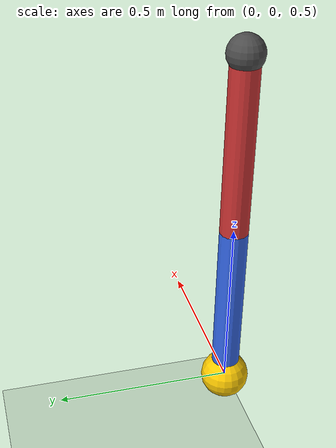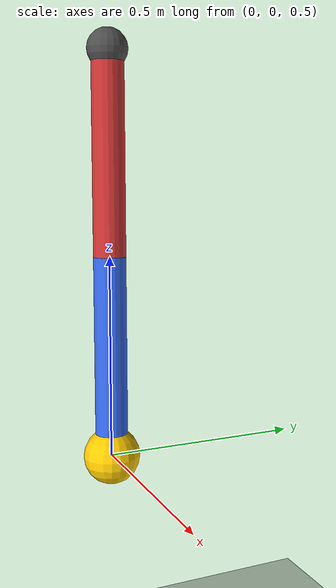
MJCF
<mujoco model="pendulum">
  <option gravity="0 0 -9.81"/>

  <worldbody>
    <light pos="0 0 3" dir="0 0 -1" diffuse="1 1 1"/>
    <geom name="floor" type="plane" size="2 2 0.1" rgba="0.8 0.9 0.8 1"/>

    <body name="anchor" pos="0 0 1.5">
      <geom type="sphere" size="0.05" rgba="0.3 0.3 0.3 1"/>

      <body name="link1" pos="0 0 0">
        <joint name="hinge1" type="hinge" axis="0 1 0" damping="0.1"/>
        <geom type="capsule" fromto="0 0 0  0 0 -0.5" size="0.04" rgba="0.8 0.2 0.2 1"/>

        <body name="link2" pos="0 0 -0.5">
          <joint name="hinge2" type="hinge" axis="0 1 0" damping="0.1"/>
          <geom type="capsule" fromto="0 0 0  0 0 -0.5" size="0.04" rgba="0.2 0.4 0.9 1"/>
          <geom type="sphere" pos="0 0 -0.5" size="0.07" rgba="1 0.8 0 1"/>
        </body>
      </body>
    </body>
  </worldbody>

  <keyframe>
    <key name="start" qpos="1.2 0.8"/>
  </keyframe>
</mujoco>
